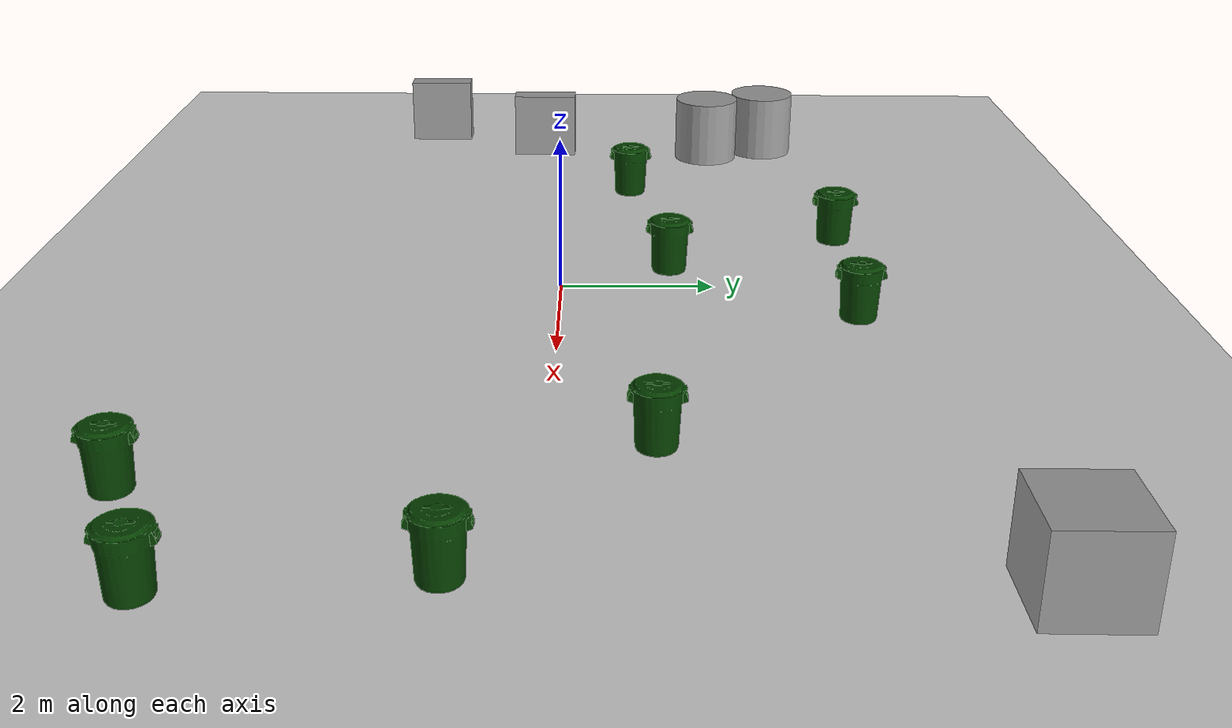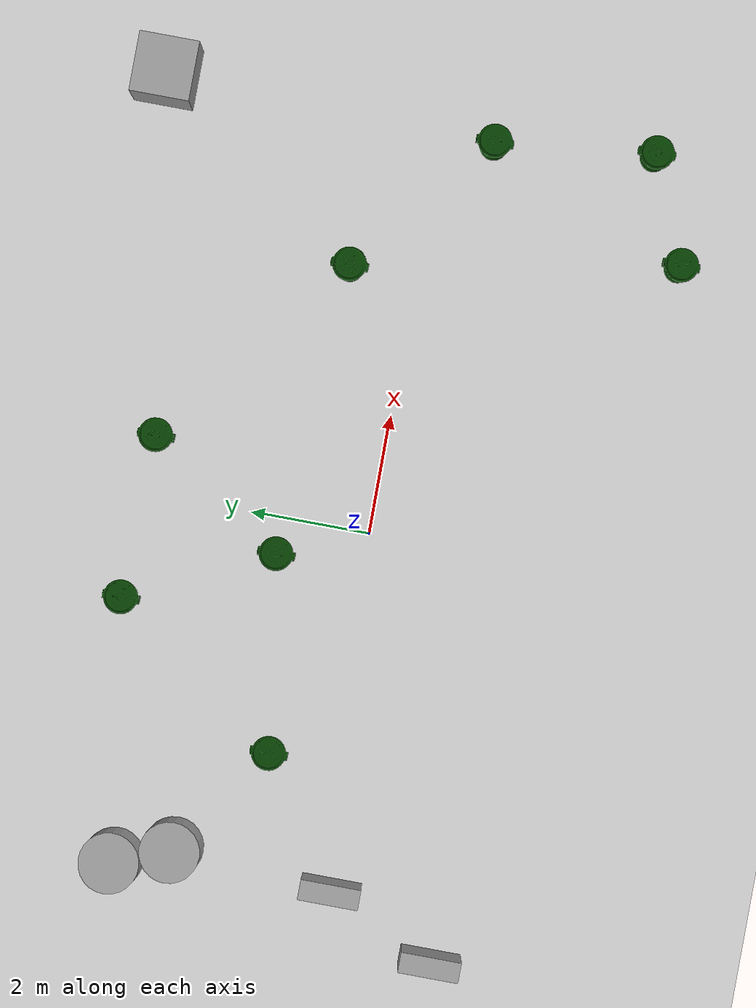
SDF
<sdf version="1.7">
 <world name="default">
  <light name="sun" type="directional">
   <pose>0 0 10 0 -0 0</pose>
   <diffuse>0.8 0.8 0.8 1</diffuse>
   <specular>0.2 0.2 0.2 1</specular>
   <attenuation>
    <range>1000</range>
    <constant>0.9</constant>
    <linear>0.01</linear>
    <quadratic>0.001</quadratic>
   </attenuation>
   <direction>-0.5 0.1 -0.9</direction>
   <spot><inner_angle>0</inner_angle><outer_angle>0</outer_angle><falloff>0</falloff></spot>
  </light>
  <model name="ground_plane">
   <static>1</static>
   <link name="link">
    <collision name="collision">
     <geometry><plane><normal>0 0 1</normal><size>100 100</size></plane></geometry>
     <surface>
      <contact><collide_bitmask>65535</collide_bitmask></contact>
      <friction><ode><mu>100</mu><mu2>50</mu2></ode></friction>
     </surface>
    </collision>
    <visual name="visual">
     <cast_shadows>0</cast_shadows>
     <geometry><plane><normal>0 0 1</normal><size>100 100</size></plane></geometry>
     <material>
      <script><uri>file://media/materials/scripts/gazebo.material</uri><name>Gazebo/Grey</name></script>
     </material>
    </visual>
   </link>
  </model>
  <physics type="ode">
   <real_time_update_rate>1000</real_time_update_rate>
   <max_step_size>0.001</max_step_size>
   <real_time_factor>1</real_time_factor>
   <ode>
    <solver>
     <type>quick</type>
     <iters>150</iters>
     <precon_iters>0</precon_iters>
     <sor>1.4</sor>
     <use_dynamic_moi_rescaling>1</use_dynamic_moi_rescaling>
    </solver>
    <constraints>
     <cfm>1e-05</cfm>
     <erp>0.2</erp>
     <contact_max_correcting_vel>2000</contact_max_correcting_vel>
     <contact_surface_layer>0.01</contact_surface_layer>
    </constraints>
   </ode>
  </physics>
  <scene><ambient>0.4 0.4 0.4 1</ambient><background>0.7 0.7 0.7 1</background><shadows>1</shadows></scene>
  <gravity>0 0 -9.8</gravity>
  <magnetic_field>6e-06 2.3e-05 -4.2e-05</magnetic_field>
  <atmosphere type="adiabatic"/>
  <spherical_coordinates>
   <surface_model>EARTH_WGS84</surface_model>
   <latitude_deg>0</latitude_deg>
   <longitude_deg>0</longitude_deg>
   <elevation>0</elevation>
   <heading_deg>0</heading_deg>
  </spherical_coordinates>
  <model name="first_2015_trash_can_0_clone">
   <link name="link">
    <inertial>
     <pose>0 0 0.3683 0 -0 0</pose>
     <mass>4.83076</mass>
     <inertia>
      <ixx>0.281534</ixx>
      <ixy>0</ixy>
      <ixz>0</ixz>
      <iyy>0.281534</iyy>
      <iyz>0</iyz>
      <izz>0.126223</izz>
     </inertia>
    </inertial>
    <visual name="visual">
     <geometry><mesh><uri>model://first_2015_trash_can/meshes/trash_can.dae</uri></mesh></geometry>
    </visual>
    <collision name="collision">
     <geometry><mesh><uri>model://first_2015_trash_can/meshes/trash_can.dae</uri></mesh></geometry>
    </collision>
   </link>
   <pose>5.2901 -4.25955 -4e-06 -0 1.6e-05 -0.00137</pose>
  </model>
  <model name="first_2015_trash_can_0_clone_1">
   <link name="link">
    <inertial>
     <pose>0 0 0.3683 0 -0 0</pose>
     <mass>4.83076</mass>
     <inertia>
      <ixx>0.281534</ixx>
      <ixy>0</ixy>
      <ixz>0</ixz>
      <iyy>0.281534</iyy>
      <iyz>0</iyz>
      <izz>0.126223</izz>
     </inertia>
    </inertial>
    <visual name="visual">
     <geometry><mesh><uri>model://first_2015_trash_can/meshes/trash_can.dae</uri></mesh></geometry>
    </visual>
    <collision name="collision">
     <geometry><mesh><uri>model://first_2015_trash_can/meshes/trash_can.dae</uri></mesh></geometry>
    </collision>
   </link>
   <pose>6.7464 -0.86571 5e-06 -4.4e-05 2.3e-05 -0.00122</pose>
  </model>
  <model name="first_2015_trash_can_0_clone_2">
   <link name="link">
    <inertial>
     <pose>0 0 0.3683 0 -0 0</pose>
     <mass>4.83076</mass>
     <inertia>
      <ixx>0.281534</ixx>
      <ixy>0</ixy>
      <ixz>0</ixz>
      <iyy>0.281534</iyy>
      <iyz>0</iyz>
      <izz>0.126223</izz>
     </inertia>
    </inertial>
    <visual name="visual">
     <geometry><mesh><uri>model://first_2015_trash_can/meshes/trash_can.dae</uri></mesh></geometry>
    </visual>
    <collision name="collision">
     <geometry><mesh><uri>model://first_2015_trash_can/meshes/trash_can.dae</uri></mesh></geometry>
    </collision>
   </link>
   <pose>-3.84166 0.961738 -1e-06 8e-06 1.7e-05 -0.001094</pose>
  </model>
  <model name="first_2015_trash_can_0_clone_3">
   <link name="link">
    <inertial>
     <pose>0 0 0.3683 0 -0 0</pose>
     <mass>4.83076</mass>
     <inertia>
      <ixx>0.281534</ixx>
      <ixy>0</ixy>
      <ixz>0</ixz>
      <iyy>0.281534</iyy>
      <iyz>0</iyz>
      <izz>0.126223</izz>
     </inertia>
    </inertial>
    <visual name="visual">
     <geometry><mesh><uri>model://first_2015_trash_can/meshes/trash_can.dae</uri></mesh></geometry>
    </visual>
    <collision name="collision">
     <geometry><mesh><uri>model://first_2015_trash_can/meshes/trash_can.dae</uri></mesh></geometry>
    </collision>
   </link>
   <pose>-1.75997 3.82372 -4e-06 -2e-06 1.8e-05 -0.00105</pose>
  </model>
  <model name="first_2015_trash_can_0_clone_4">
   <link name="link">
    <inertial>
     <pose>0 0 0.3683 0 -0 0</pose>
     <mass>4.83076</mass>
     <inertia>
      <ixx>0.281534</ixx>
      <ixy>0</ixy>
      <ixz>0</ixz>
      <iyy>0.281534</iyy>
      <iyz>0</iyz>
      <izz>0.126223</izz>
     </inertia>
    </inertial>
    <visual name="visual">
     <geometry><mesh><uri>model://first_2015_trash_can/meshes/trash_can.dae</uri></mesh></geometry>
    </visual>
    <collision name="collision">
     <geometry><mesh><uri>model://first_2015_trash_can/meshes/trash_can.dae</uri></mesh></geometry>
    </collision>
   </link>
   <pose>-0.598108 1.44137 -2e-06 -1e-06 1.1e-05 -0.001029</pose>
  </model>
  <model name="first_2015_trash_can_0_clone_5">
   <link name="link">
    <inertial>
     <pose>0 0 0.3683 0 -0 0</pose>
     <mass>4.83076</mass>
     <inertia>
      <ixx>0.281534</ixx>
      <ixy>0</ixy>
      <ixz>0</ixz>
      <iyy>0.281534</iyy>
      <iyz>0</iyz>
      <izz>0.126223</izz>
     </inertia>
    </inertial>
    <visual name="visual">
     <geometry><mesh><uri>model://first_2015_trash_can/meshes/trash_can.dae</uri></mesh></geometry>
    </visual>
    <collision name="collision">
     <geometry><mesh><uri>model://first_2015_trash_can/meshes/trash_can.dae</uri></mesh></geometry>
    </collision>
   </link>
   <pose>0.964442 3.74754 1e-06 -4e-06 -5e-06 -0.001016</pose>
  </model>
  <model name="first_2015_trash_can_0_clone_6">
   <link name="link">
    <inertial>
     <pose>0 0 0.3683 0 -0 0</pose>
     <mass>4.83076</mass>
     <inertia>
      <ixx>0.281534</ixx>
      <ixy>0</ixy>
      <ixz>0</ixz>
      <iyy>0.281534</iyy>
      <iyz>0</iyz>
      <izz>0.126223</izz>
     </inertia>
    </inertial>
    <visual name="visual">
     <geometry><mesh><uri>model://first_2015_trash_can/meshes/trash_can.dae</uri></mesh></geometry>
    </visual>
    <collision name="collision">
     <geometry><mesh><uri>model://first_2015_trash_can/meshes/trash_can.dae</uri></mesh></geometry>
    </collision>
   </link>
   <pose>4.31342 1.12308 -3e-06 -4e-06 9e-06 -0.001029</pose>
  </model>
  <model name="first_2015_trash_can_0_clone_7">
   <link name="link">
    <inertial>
     <pose>0 0 0.3683 0 -0 0</pose>
     <mass>4.83076</mass>
     <inertia>
      <ixx>0.281534</ixx>
      <ixy>0</ixy>
      <ixz>0</ixz>
      <iyy>0.281534</iyy>
      <iyz>0</iyz>
      <izz>0.126223</izz>
     </inertia>
    </inertial>
    <visual name="visual">
     <geometry><mesh><uri>model://first_2015_trash_can/meshes/trash_can.dae</uri></mesh></geometry>
    </visual>
    <collision name="collision">
     <geometry><mesh><uri>model://first_2015_trash_can/meshes/trash_can.dae</uri></mesh></geometry>
    </collision>
   </link>
   <pose>7.04384 -3.53016 -4e-06 1.4e-05 1.4e-05 -0.000929</pose>
  </model>
  <model name="unit_box">
   <pose>-6.76887 -2.26339 0.5 0 -0 -3e-06</pose>
   <link name="link">
    <inertial>
     <mass>1</mass>
     <inertia>
      <ixx>0.166667</ixx>
      <ixy>0</ixy>
      <ixz>0</ixz>
      <iyy>0.166667</iyy>
      <iyz>0</iyz>
      <izz>0.166667</izz>
     </inertia>
    </inertial>
    <collision name="collision"><geometry><box><size>0.337236 1 1</size></box></geometry></collision>
    <visual name="visual">
     <geometry><box><size>0.337236 1 1</size></box></geometry>
     <material>
      <script><name>Gazebo/Grey</name><uri>file://media/materials/scripts/gazebo.material</uri></script>
     </material>
    </visual>
   </link>
  </model>
  <model name="unit_box_0">
   <pose>-5.90472 -0.439293 0.5 0 -0 0</pose>
   <link name="link">
    <inertial>
     <mass>1</mass>
     <inertia>
      <ixx>0.166667</ixx>
      <ixy>0</ixy>
      <ixz>0</ixz>
      <iyy>0.166667</iyy>
      <iyz>0</iyz>
      <izz>0.166667</izz>
     </inertia>
    </inertial>
    <collision name="collision"><geometry><box><size>0.335637 1 1</size></box></geometry></collision>
    <visual name="visual">
     <geometry><box><size>0.335637 1 1</size></box></geometry>
     <material>
      <script><name>Gazebo/Grey</name><uri>file://media/materials/scripts/gazebo.material</uri></script>
     </material>
    </visual>
   </link>
  </model>
  <model name="unit_cylinder_0">
   <pose>-6.05686 3.19118 0.499999 0 -0 0.053449</pose>
   <link name="link">
    <inertial>
     <mass>1</mass>
     <inertia><ixx>0.145833</ixx><ixy>0</ixy><ixz>0</ixz><iyy>0.145833</iyy><iyz>0</iyz><izz>0.125</izz></inertia>
    </inertial>
    <collision name="collision">
     <geometry><cylinder><radius>0.5</radius><length>1</length></cylinder></geometry>
    </collision>
    <visual name="visual">
     <geometry><cylinder><radius>0.5</radius><length>1</length></cylinder></geometry>
     <material>
      <script><name>Gazebo/Grey</name><uri>file://media/materials/scripts/gazebo.material</uri></script>
     </material>
    </visual>
   </link>
  </model>
  <model name="unit_cylinder">
   <link name="link">
    <inertial>
     <mass>1</mass>
     <inertia><ixx>0.145833</ixx><ixy>0</ixy><ixz>0</ixz><iyy>0.145833</iyy><iyz>0</iyz><izz>0.125</izz></inertia>
    </inertial>
    <visual name="visual">
     <geometry><cylinder><radius>0.5</radius><length>1</length></cylinder></geometry>
     <material>
      <script><name>Gazebo/Grey</name><uri>file://media/materials/scripts/gazebo.material</uri></script>
      <shader type="pixel"/>
     </material>
    </visual>
    <collision name="collision">
     <geometry><cylinder><radius>0.5</radius><length>1</length></cylinder></geometry>
     <surface>
      <friction>
       <ode><mu>1</mu><mu2>1</mu2><fdir1>0 0 0</fdir1><slip1>0</slip1><slip2>0</slip2></ode>
       <torsional>
        <coefficient>1</coefficient>
        <patch_radius>0</patch_radius>
        <surface_radius>0</surface_radius>
        <use_patch_radius>1</use_patch_radius>
        <ode><slip>0</slip></ode>
       </torsional>
      </friction>
      <bounce><restitution_coefficient>0</restitution_coefficient><threshold>1e+06</threshold></bounce>
      <contact>
       <collide_without_contact>0</collide_without_contact>
       <collide_without_contact_bitmask>1</collide_without_contact_bitmask>
       <collide_bitmask>1</collide_bitmask>
       <ode>
        <soft_cfm>0</soft_cfm>
        <soft_erp>0.2</soft_erp>
        <kp>1e+13</kp>
        <kd>1</kd>
        <max_vel>0.01</max_vel>
        <min_depth>0</min_depth>
       </ode>
       <bullet>
        <split_impulse>1</split_impulse>
        <split_impulse_penetration_threshold>-0.01</split_impulse_penetration_threshold>
        <soft_cfm>0</soft_cfm>
        <soft_erp>0.2</soft_erp>
        <kp>1e+13</kp>
        <kd>1</kd>
       </bullet>
      </contact>
     </surface>
    </collision>
   </link>
   <static>1</static>
   <pose>-5.70495 2.24923 0.499999 -2e-06 2e-06 0.009321</pose>
  </model>
  <model name="unit_box_1">
   <pose>6.92488 4.69365 0.5 0 0 -0.000221</pose>
   <link name="link">
    <inertial>
     <mass>1</mass>
     <inertia>
      <ixx>0.166667</ixx>
      <ixy>0</ixy>
      <ixz>0</ixz>
      <iyy>0.166667</iyy>
      <iyz>0</iyz>
      <izz>0.166667</izz>
     </inertia>
    </inertial>
    <collision name="collision"><geometry><box><size>1 1 1</size></box></geometry></collision>
    <visual name="visual">
     <geometry><box><size>1 1 1</size></box></geometry>
     <material>
      <script><name>Gazebo/Grey</name><uri>file://media/materials/scripts/gazebo.material</uri></script>
     </material>
    </visual>
   </link>
  </model>
 </world>
</sdf>
